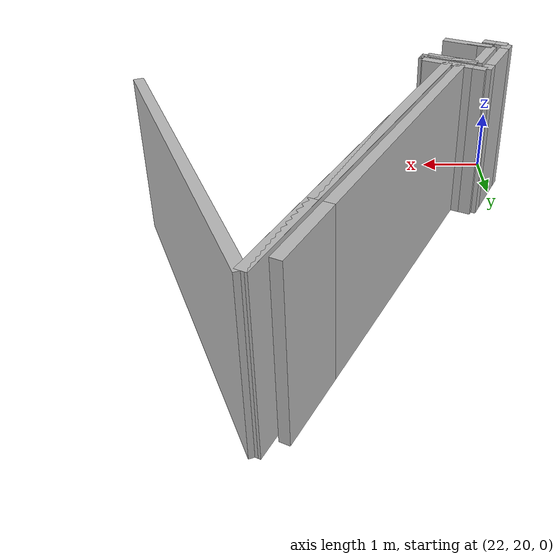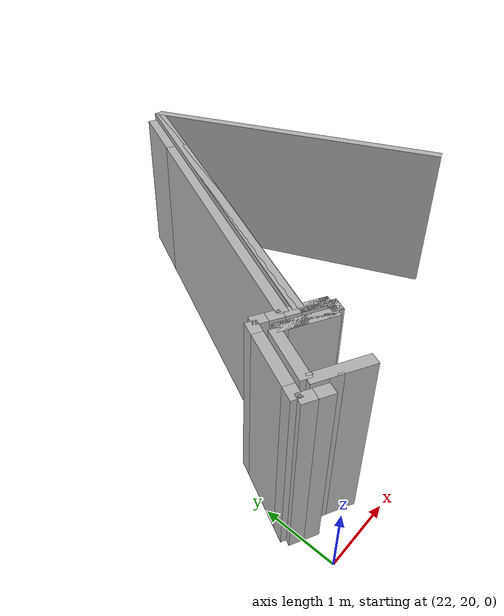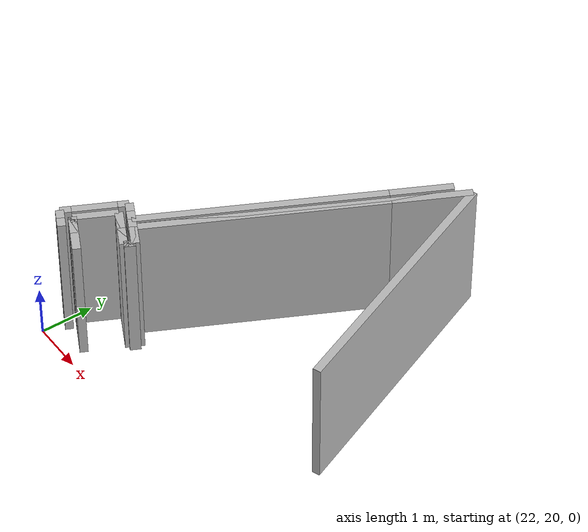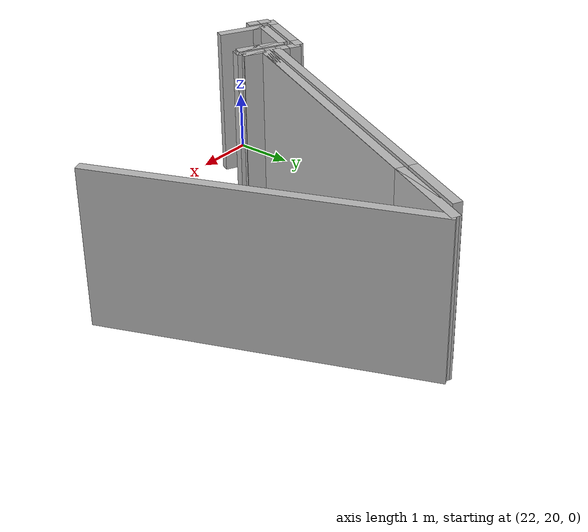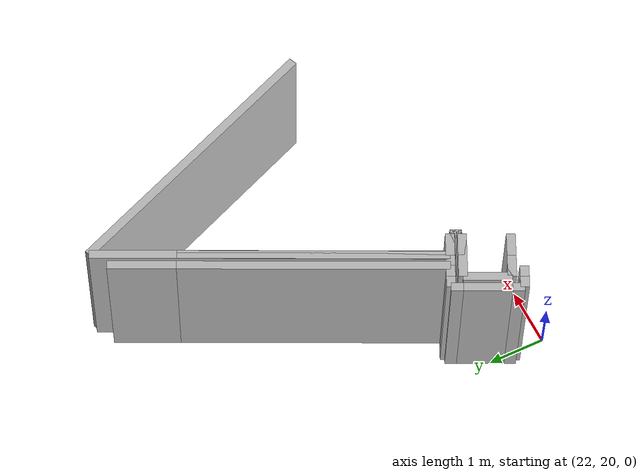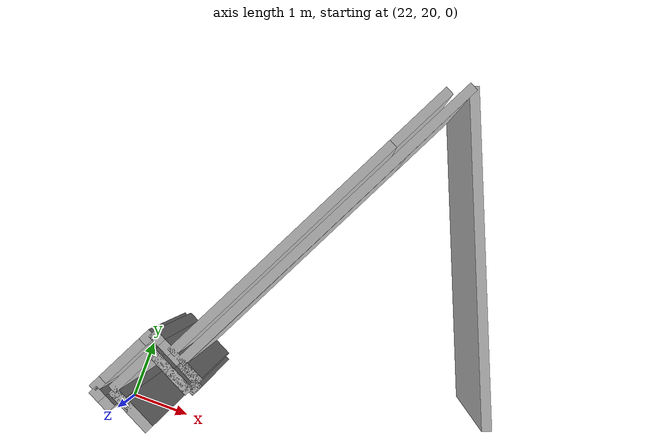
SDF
<sdf version="1.6">
 <model name="sps_1000">
  <static>1</static>
  <allow_auto_disable>0</allow_auto_disable>
  <link name="Wall764">
   <collision name="collision"><geometry><box><size>0.20027 0.15 2.5</size></box></geometry></collision>
   <visual name="visual">
    <geometry><box><size>0.20027 0.15 2.5</size></box></geometry>
    <transparency>0.0</transparency>
   </visual>
   <pose>23.249 21.1344 1.25 0 0 -2.03158</pose>
  </link>
  <link name="Wall1360">
   <collision name="collision"><geometry><box><size>0.800209 0.15 2.5</size></box></geometry></collision>
   <visual name="visual">
    <geometry><box><size>0.800209 0.15 2.5</size></box></geometry>
    <transparency>0.0</transparency>
   </visual>
   <pose>22.3106 21.0411 1.25 0 -0 1.11117</pose>
  </link>
  <link name="Wall1362">
   <collision name="collision"><geometry><box><size>0.40095 0.15 2.5</size></box></geometry></collision>
   <visual name="visual">
    <geometry><box><size>0.40095 0.15 2.5</size></box></geometry>
    <transparency>0.0</transparency>
   </visual>
   <pose>23.1139 21.3131 1.25 0 -0 2.68149</pose>
  </link>
  <link name="Wall7686">
   <collision name="collision"><geometry><box><size>0.799718 0.15 2.5</size></box></geometry></collision>
   <visual name="visual">
    <geometry><box><size>0.799718 0.15 2.5</size></box></geometry>
    <transparency>0.0</transparency>
   </visual>
   <pose>22.4915 20.5052 1.25 0 -0 2.68218</pose>
  </link>
  <link name="Wall7687">
   <collision name="collision"><geometry><box><size>0.800209 0.15 2.5</size></box></geometry></collision>
   <visual name="visual">
    <geometry><box><size>0.800209 0.15 2.5</size></box></geometry>
    <transparency>0.0</transparency>
   </visual>
   <pose>22.3106 21.0411 1.25 0 -0 1.11117</pose>
  </link>
  <link name="Wall7688">
   <collision name="collision"><geometry><box><size>0.799498 0.15 2.5</size></box></geometry></collision>
   <visual name="visual">
    <geometry><box><size>0.799498 0.15 2.5</size></box></geometry>
    <transparency>0.0</transparency>
   </visual>
   <pose>22.8462 21.2222 1.25 0 0 -0.460063</pose>
  </link>
  <link name="Wall7689">
   <collision name="collision"><geometry><box><size>0.20027 0.15 2.5</size></box></geometry></collision>
   <visual name="visual">
    <geometry><box><size>0.20027 0.15 2.5</size></box></geometry>
    <transparency>0.0</transparency>
   </visual>
   <pose>23.249 21.1344 1.25 0 -0 1.11001</pose>
  </link>
  <link name="Wall7690">
   <collision name="collision"><geometry><box><size>0.406272 0.15 2.5</size></box></geometry></collision>
   <visual name="visual">
    <geometry><box><size>0.406272 0.15 2.5</size></box></geometry>
    <transparency>0.0</transparency>
   </visual>
   <pose>23.1115 21.3143 1.25 0 -0 2.68144</pose>
  </link>
  <link name="Wall7691">
   <collision name="collision"><geometry><box><size>5.89954 0.15 2.5</size></box></geometry></collision>
   <visual name="visual">
    <geometry><box><size>5.89954 0.15 2.5</size></box></geometry>
    <transparency>0.0</transparency>
   </visual>
   <pose>24.2403 24.047 1.25 0 -0 1.11029</pose>
  </link>
  <link name="Wall7692">
   <collision name="collision"><geometry><box><size>5.05114 0.15 2.5</size></box></geometry></collision>
   <visual name="visual">
    <geometry><box><size>5.05114 0.15 2.5</size></box></geometry>
    <transparency>0.0</transparency>
   </visual>
   <pose>26.5163 24.3556 1.25 0 0 -1.17869</pose>
  </link>
  <link name="Wall15371">
   <collision name="collision"><geometry><box><size>0.202427 0.15 2.5</size></box></geometry></collision>
   <visual name="visual">
    <geometry><box><size>0.202427 0.15 2.5</size></box></geometry>
    <transparency>0.0</transparency>
   </visual>
   <pose>22.1328 20.4598 1.25 0 -0 2.68172</pose>
  </link>
  <link name="Wall15372">
   <collision name="collision"><geometry><box><size>0.197077 0.15 2.5</size></box></geometry></collision>
   <visual name="visual">
    <geometry><box><size>0.197077 0.15 2.5</size></box></geometry>
    <transparency>0.0</transparency>
   </visual>
   <pose>21.9538 20.5484 1.25 0 -0 2.6821</pose>
  </link>
  <link name="Wall21972">
   <collision name="collision"><geometry><box><size>4.46434 0.15 2.5</size></box></geometry></collision>
   <visual name="visual">
    <geometry><box><size>4.46434 0.15 2.5</size></box></geometry>
    <transparency>0.0</transparency>
   </visual>
   <pose>23.9249 23.4025 1.25 0 -0 1.11127</pose>
  </link>
  <link name="Wall21973">
   <collision name="collision"><geometry><box><size>1.43517 0.15 2.5</size></box></geometry></collision>
   <visual name="visual">
    <geometry><box><size>1.43517 0.15 2.5</size></box></geometry>
    <transparency>0.0</transparency>
   </visual>
   <pose>25.2331 26.0463 1.25 0 -0 1.11141</pose>
  </link>
  <link name="Wall26294">
   <collision name="collision"><geometry><box><size>0.201854 0.15 2.5</size></box></geometry></collision>
   <visual name="visual">
    <geometry><box><size>0.201854 0.15 2.5</size></box></geometry>
    <transparency>0.0</transparency>
   </visual>
   <pose>22.6652 21.5352 1.25 0 -0 2.68268</pose>
  </link>
  <link name="Wall26295">
   <collision name="collision"><geometry><box><size>0.197651 0.15 2.5</size></box></geometry></collision>
   <visual name="visual">
    <geometry><box><size>0.197651 0.15 2.5</size></box></geometry>
    <transparency>0.0</transparency>
   </visual>
   <pose>22.4861 21.6237 1.25 0 -0 2.6825</pose>
  </link>
  <link name="Wall26296">
   <collision name="collision"><geometry><box><size>0.402178 0.15 2.5</size></box></geometry></collision>
   <visual name="visual">
    <geometry><box><size>0.402178 0.15 2.5</size></box></geometry>
    <transparency>0.0</transparency>
   </visual>
   <pose>23.0243 21.134 1.25 0 -0 2.68147</pose>
  </link>
  <link name="Wall26297">
   <collision name="collision"><geometry><box><size>0.399749 0.15 2.5</size></box></geometry></collision>
   <visual name="visual">
    <geometry><box><size>0.399749 0.15 2.5</size></box></geometry>
    <transparency>0.0</transparency>
   </visual>
   <pose>22.665 21.312 1.25 0 -0 2.6817</pose>
  </link>
  <link name="Wall26298">
   <collision name="collision"><geometry><box><size>4.4644 0.15 2.5</size></box></geometry></collision>
   <visual name="visual">
    <geometry><box><size>4.4644 0.15 2.5</size></box></geometry>
    <transparency>0.0</transparency>
   </visual>
   <pose>23.7455 23.4912 1.25 0 -0 1.11134</pose>
  </link>
  <link name="Wall26299">
   <collision name="collision"><geometry><box><size>1.13538 0.15 2.5</size></box></geometry></collision>
   <visual name="visual">
    <geometry><box><size>1.13538 0.15 2.5</size></box></geometry>
    <transparency>0.0</transparency>
   </visual>
   <pose>24.9872 26.0007 1.25 0 -0 1.11124</pose>
  </link>
  <link name="Wall30873">
   <collision name="collision"><geometry><box><size>0.199697 0.15 2.5</size></box></geometry></collision>
   <visual name="visual">
    <geometry><box><size>0.199697 0.15 2.5</size></box></geometry>
    <transparency>0.0</transparency>
   </visual>
   <pose>21.9098 20.6816 1.25 0 -0 1.11098</pose>
  </link>
  <link name="Wall30874">
   <collision name="collision"><geometry><box><size>0.800346 0.15 2.5</size></box></geometry></collision>
   <visual name="visual">
    <geometry><box><size>0.800346 0.15 2.5</size></box></geometry>
    <transparency>0.0</transparency>
   </visual>
   <pose>22.1315 21.1298 1.25 0 -0 1.11151</pose>
  </link>
  <link name="Wall30875">
   <collision name="collision"><geometry><box><size>0.199752 0.15 2.5</size></box></geometry></collision>
   <visual name="visual">
    <geometry><box><size>0.199752 0.15 2.5</size></box></geometry>
    <transparency>0.0</transparency>
   </visual>
   <pose>22.3532 21.578 1.25 0 -0 1.11111</pose>
  </link>
  <link name="Wall30877">
   <collision name="collision"><geometry><box><size>0.399667 0.15 2.5</size></box></geometry></collision>
   <visual name="visual">
    <geometry><box><size>0.399667 0.15 2.5</size></box></geometry>
    <transparency>0.0</transparency>
   </visual>
   <pose>22.31 20.595 1.25 0 -0 2.68177</pose>
  </link>
  <link name="Wall35038">
   <collision name="collision"><geometry><box><size>0.00128319 0.15 2.5</size></box></geometry></collision>
   <visual name="visual">
    <geometry><box><size>0.00128319 0.15 2.5</size></box></geometry>
    <transparency>0.0</transparency>
   </visual>
   <pose>22.9336 21.4024 1.25 0 -0 2.69922</pose>
  </link>
  <link name="Wall35039">
   <collision name="collision"><geometry><box><size>0.197978 0.15 2.5</size></box></geometry></collision>
   <visual name="visual">
    <geometry><box><size>0.197978 0.15 2.5</size></box></geometry>
    <transparency>0.0</transparency>
   </visual>
   <pose>22.8444 21.4466 1.25 0 -0 2.68194</pose>
  </link>
 </model>
</sdf>
